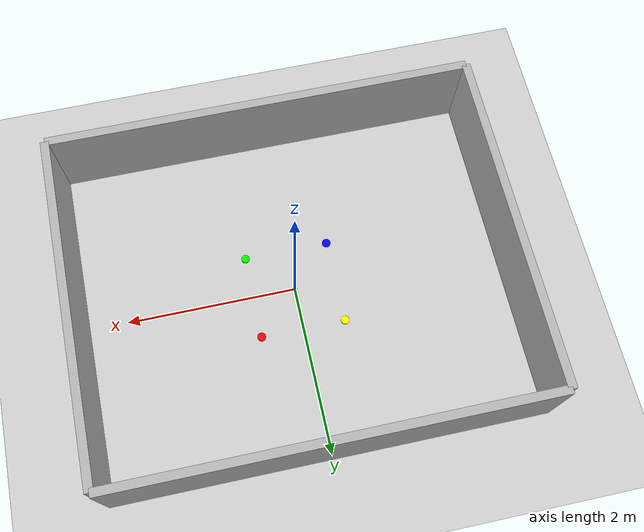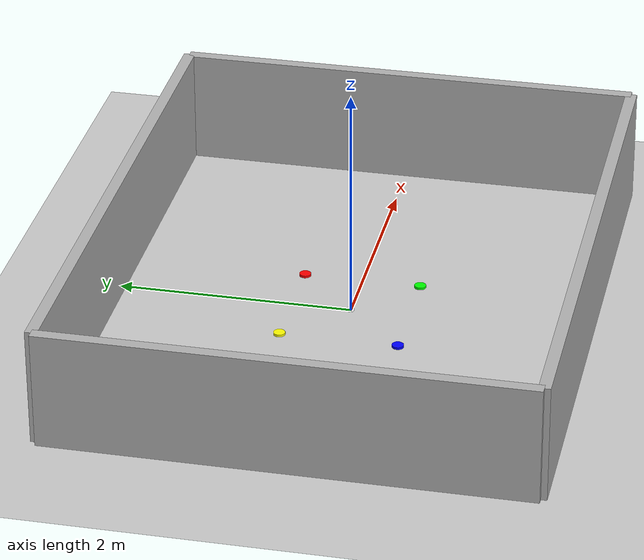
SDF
<?xml version="1.0" ?>
<sdf version="1.6">
  <world name="navigation_test">
    <!-- Include standard models -->
    <include>
      <uri>model://ground_plane</uri>
    </include>
    <include>
      <uri>model://sun</uri>
    </include>

    <!-- Physics settings optimized for navigation testing -->
    <physics name="default" type="ode">
      <max_step_size>0.001</max_step_size>
      <real_time_factor>1.0</real_time_factor>
      <real_time_update_rate>1000</real_time_update_rate>
    </physics>

    <!-- Camera for visual monitoring (optional) -->
    <gui fullscreen='0'>
      <camera name='user_camera'>
        <pose>0 -5 3 0 0.5 1.57</pose>
        <view_controller>orbit</view_controller>
      </camera>
    </gui>

    <!-- Enhanced navigation test environment with walls for laser detection -->
    <!-- Walls provide clear features for SLAM mapping and laser scan detection -->

    <!-- Optional: Add reference markers at corners of 1-meter square for visual validation -->
    <!-- Corner marker 1: (0.5, 0.5) -->
    <model name="corner_marker_1">
      <pose>0.5 0.5 0.01 0 0 0</pose>
      <static>true</static>
      <link name="link">
        <visual name="visual">
          <geometry>
            <cylinder>
              <radius>0.05</radius>
              <length>0.02</length>
            </cylinder>
          </geometry>
          <material>
            <ambient>1.0 0.0 0.0 1</ambient>
            <diffuse>1.0 0.0 0.0 1</diffuse>
          </material>
        </visual>
        <collision name="collision">
          <geometry>
            <cylinder>
              <radius>0.05</radius>
              <length>0.02</length>
            </cylinder>
          </geometry>
        </collision>
      </link>
    </model>

    <!-- Corner marker 2: (0.5, -0.5) -->
    <model name="corner_marker_2">
      <pose>0.5 -0.5 0.01 0 0 0</pose>
      <static>true</static>
      <link name="link">
        <visual name="visual">
          <geometry>
            <cylinder>
              <radius>0.05</radius>
              <length>0.02</length>
            </cylinder>
          </geometry>
          <material>
            <ambient>0.0 1.0 0.0 1</ambient>
            <diffuse>0.0 1.0 0.0 1</diffuse>
          </material>
        </visual>
        <collision name="collision">
          <geometry>
            <cylinder>
              <radius>0.05</radius>
              <length>0.02</length>
            </cylinder>
          </geometry>
        </collision>
      </link>
    </model>

    <!-- Corner marker 3: (-0.5, -0.5) -->
    <model name="corner_marker_3">
      <pose>-0.5 -0.5 0.01 0 0 0</pose>
      <static>true</static>
      <link name="link">
        <visual name="visual">
          <geometry>
            <cylinder>
              <radius>0.05</radius>
              <length>0.02</length>
            </cylinder>
          </geometry>
          <material>
            <ambient>0.0 0.0 1.0 1</ambient>
            <diffuse>0.0 0.0 1.0 1</diffuse>
          </material>
        </visual>
        <collision name="collision">
          <geometry>
            <cylinder>
              <radius>0.05</radius>
              <length>0.02</length>
            </cylinder>
          </geometry>
        </collision>
      </link>
    </model>

    <!-- Corner marker 4: (-0.5, 0.5) -->
    <model name="corner_marker_4">
      <pose>-0.5 0.5 0.01 0 0 0</pose>
      <static>true</static>
      <link name="link">
        <visual name="visual">
          <geometry>
            <cylinder>
              <radius>0.05</radius>
              <length>0.02</length>
            </cylinder>
          </geometry>
          <material>
            <ambient>1.0 1.0 0.0 1</ambient>
            <diffuse>1.0 1.0 0.0 1</diffuse>
          </material>
        </visual>
        <collision name="collision">
          <geometry>
            <cylinder>
              <radius>0.05</radius>
              <length>0.02</length>
            </cylinder>
          </geometry>
        </collision>
      </link>
    </model>

    <!-- Center marker for reference -->
    <model name="center_marker">
      <pose>0 0 0.01 0 0 0</pose>
      <static>true</static>
      <link name="link">
        <visual name="visual">
          <geometry>
            <cylinder>
              <radius>0.03</radius>
              <length>0.02</length>
            </cylinder>
          </geometry>
          <material>
            <ambient>1.0 1.0 1.0 1</ambient>
            <diffuse>1.0 1.0 1.0 1</diffuse>
          </material>
        </visual>
        <collision name="collision">
          <geometry>
            <cylinder>
              <radius>0.03</radius>
              <length>0.02</length>
            </cylinder>
          </geometry>
        </collision>
      </link>
    </model>

    <!-- Walls for laser detection and SLAM mapping -->
    <!-- North wall -->
    <model name="north_wall">
      <pose>0 2 0.5 0 0 0</pose>
      <static>true</static>
      <link name="link">
        <visual name="visual">
          <geometry>
            <box>
              <size>5 0.1 1</size>
            </box>
          </geometry>
          <material>
            <ambient>0.7 0.7 0.7 1</ambient>
            <diffuse>0.7 0.7 0.7 1</diffuse>
          </material>
        </visual>
        <collision name="collision">
          <geometry>
            <box>
              <size>5 0.1 1</size>
            </box>
          </geometry>
        </collision>
      </link>
    </model>

    <!-- South wall -->
    <model name="south_wall">
      <pose>0 -2 0.5 0 0 0</pose>
      <static>true</static>
      <link name="link">
        <visual name="visual">
          <geometry>
            <box>
              <size>5 0.1 1</size>
            </box>
          </geometry>
          <material>
            <ambient>0.7 0.7 0.7 1</ambient>
            <diffuse>0.7 0.7 0.7 1</diffuse>
          </material>
        </visual>
        <collision name="collision">
          <geometry>
            <box>
              <size>5 0.1 1</size>
            </box>
          </geometry>
        </collision>
      </link>
    </model>

    <!-- East wall -->
    <model name="east_wall">
      <pose>2.5 0 0.5 0 0 0</pose>
      <static>true</static>
      <link name="link">
        <visual name="visual">
          <geometry>
            <box>
              <size>0.1 4 1</size>
            </box>
          </geometry>
          <material>
            <ambient>0.7 0.7 0.7 1</ambient>
            <diffuse>0.7 0.7 0.7 1</diffuse>
          </material>
        </visual>
        <collision name="collision">
          <geometry>
            <box>
              <size>0.1 4 1</size>
            </box>
          </geometry>
        </collision>
      </link>
    </model>

    <!-- West wall -->
    <model name="west_wall">
      <pose>-2.5 0 0.5 0 0 0</pose>
      <static>true</static>
      <link name="link">
        <visual name="visual">
          <geometry>
            <box>
              <size>0.1 4 1</size>
            </box>
          </geometry>
          <material>
            <ambient>0.7 0.7 0.7 1</ambient>
            <diffuse>0.7 0.7 0.7 1</diffuse>
          </material>
        </visual>
        <collision name="collision">
          <geometry>
            <box>
              <size>0.1 4 1</size>
            </box>
          </geometry>
        </collision>
      </link>
    </model>

  </world>
</sdf>
